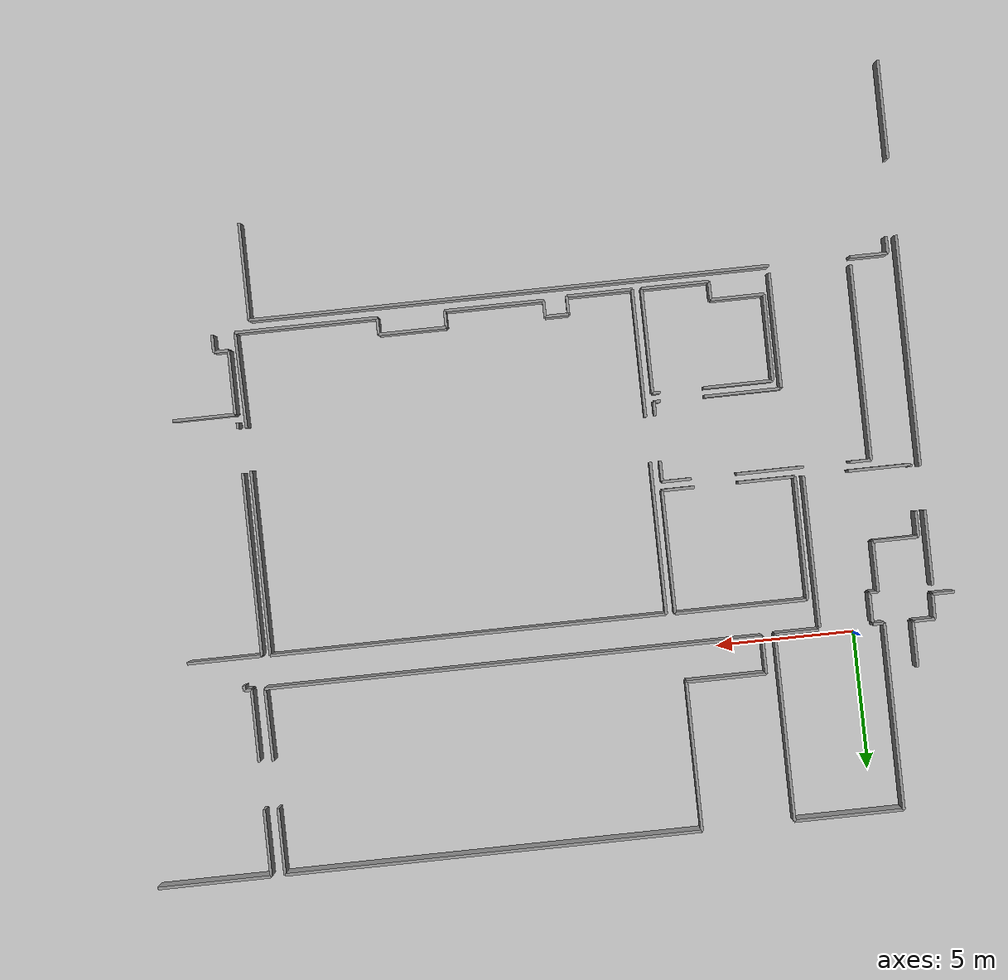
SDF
<sdf version="1.6">
 <world name="default">
  <model name="ground_plane">
   <static>1</static>
   <link name="link">
    <collision name="collision">
     <geometry><plane><normal>0 0 1</normal><size>100 100</size></plane></geometry>
     <surface><friction><ode><mu>100</mu><mu2>50</mu2></ode></friction></surface>
    </collision>
    <visual name="visual">
     <cast_shadows>0</cast_shadows>
     <geometry><plane><normal>0 0 1</normal><size>100 100</size></plane></geometry>
     <material>
      <script><uri>file://media/materials/scripts/gazebo.material</uri><name>Gazebo/Grey</name></script>
     </material>
    </visual>
   </link>
  </model>
  <model name="0510032260_A_40_1_102">
   <static>1</static>
   <link name="Wall_215">
    <collision name="Wall_215_Collision">
     <geometry><box><size>2.72819002773 0.1 2.5</size></box></geometry>
     <pose>1.36409501387 0 1.25 0 0 0</pose>
    </collision>
    <visual name="Wall_215_Visual">
     <pose>1.36409501387 0 1.25 0 0 0</pose>
     <geometry><box><size>2.72819002773 0.1 2.5</size></box></geometry>
     <material>
      <script><uri>file://media/materials/scripts/gazebo.material</uri><name>Gazebo/Grey</name></script>
      <ambient>1 1 1 1</ambient>
     </material>
    </visual>
    <pose>47.396257068 -32.2178998204 0 0 0 -1.57079632679</pose>
   </link>
   <link name="Wall_216">
    <collision name="Wall_216_Collision">
     <geometry><box><size>8.36936862613 0.1 2.5</size></box></geometry>
     <pose>4.18468431307 0 1.25 0 0 0</pose>
    </collision>
    <visual name="Wall_216_Visual">
     <pose>4.18468431307 0 1.25 0 0 0</pose>
     <geometry><box><size>8.36936862613 0.1 2.5</size></box></geometry>
     <material>
      <script><uri>file://media/materials/scripts/gazebo.material</uri><name>Gazebo/Grey</name></script>
      <ambient>1 1 1 1</ambient>
     </material>
    </visual>
    <pose>47.396257068 -36.5375657615 0 0 0 -1.57079632679</pose>
   </link>
   <link name="Wall_217">
    <collision name="Wall_217_Collision">
     <geometry><box><size>3.55483350997 0.1 2.5</size></box></geometry>
     <pose>1.77741675498 0 1.25 0 0 0</pose>
    </collision>
    <visual name="Wall_217_Visual">
     <pose>1.77741675498 0 1.25 0 0 0</pose>
     <geometry><box><size>3.55483350997 0.1 2.5</size></box></geometry>
     <material>
      <script><uri>file://media/materials/scripts/gazebo.material</uri><name>Gazebo/Grey</name></script>
      <ambient>1 1 1 1</ambient>
     </material>
    </visual>
    <pose>47.396257068 -47.6846240251 0 0 0 -1.57079632679</pose>
   </link>
   <link name="Wall_231">
    <collision name="Wall_231_Collision">
     <geometry><box><size>0.780570768577 0.1 2.5</size></box></geometry>
     <pose>0.390285384288 0 1.25 0 0 0</pose>
    </collision>
    <visual name="Wall_231_Visual">
     <pose>0.390285384288 0 1.25 0 0 0</pose>
     <geometry><box><size>0.780570768577 0.1 2.5</size></box></geometry>
     <material>
      <script><uri>file://media/materials/scripts/gazebo.material</uri><name>Gazebo/Grey</name></script>
      <ambient>1 1 1 1</ambient>
     </material>
    </visual>
    <pose>47.427987587 -31.9126522272 0 0 0 3.14159265359</pose>
   </link>
   <link name="Wall_239">
    <collision name="Wall_239_Collision">
     <geometry><box><size>1.66851761361 0.1 2.5</size></box></geometry>
     <pose>0.834258806806 0 1.25 0 0 0</pose>
    </collision>
    <visual name="Wall_239_Visual">
     <pose>0.834258806806 0 1.25 0 0 0</pose>
     <geometry><box><size>1.66851761361 0.1 2.5</size></box></geometry>
     <material>
      <script><uri>file://media/materials/scripts/gazebo.material</uri><name>Gazebo/Grey</name></script>
      <ambient>1 1 1 1</ambient>
     </material>
    </visual>
    <pose>48.2353389137 -29.3415917298 0 0 0 -1.57079632679</pose>
   </link>
   <link name="Wall_240">
    <collision name="Wall_240_Collision">
     <geometry><box><size>0.792501443739 0.1 2.5</size></box></geometry>
     <pose>0.396250721869 0 1.25 0 0 0</pose>
    </collision>
    <visual name="Wall_240_Visual">
     <pose>0.396250721869 0 1.25 0 0 0</pose>
     <geometry><box><size>0.792501443739 0.1 2.5</size></box></geometry>
     <material>
      <script><uri>file://media/materials/scripts/gazebo.material</uri><name>Gazebo/Grey</name></script>
      <ambient>1 1 1 1</ambient>
     </material>
    </visual>
    <pose>48.2353389137 -31.0101093434 0 0 0 3.14159265359</pose>
   </link>
   <link name="Wall_241">
    <collision name="Wall_241_Collision">
     <geometry><box><size>0.902665040928 0.1 2.5</size></box></geometry>
     <pose>0.451332520464 0 1.25 0 0 0</pose>
    </collision>
    <visual name="Wall_241_Visual">
     <pose>0.451332520464 0 1.25 0 0 0</pose>
     <geometry><box><size>0.902665040928 0.1 2.5</size></box></geometry>
     <material>
      <script><uri>file://media/materials/scripts/gazebo.material</uri><name>Gazebo/Grey</name></script>
      <ambient>1 1 1 1</ambient>
     </material>
    </visual>
    <pose>47.4428374699 -31.0101093434 0 0 0 -1.5872482244</pose>
   </link>
   <link name="Wall_242">
    <collision name="Wall_242_Collision">
     <geometry><box><size>2.2720320859 0.1 2.5</size></box></geometry>
     <pose>1.13601604295 0 1.25 0 0 0</pose>
    </collision>
    <visual name="Wall_242_Visual">
     <pose>1.13601604295 0 1.25 0 0 0</pose>
     <geometry><box><size>2.2720320859 0.1 2.5</size></box></geometry>
     <material>
      <script><uri>file://media/materials/scripts/gazebo.material</uri><name>Gazebo/Grey</name></script>
      <ambient>1 1 1 1</ambient>
     </material>
    </visual>
    <pose>49.9943519676 -36.6326303966 0 0 0 3.14159265359</pose>
   </link>
   <link name="Wall_243">
    <collision name="Wall_243_Collision">
     <geometry><box><size>0.0864339338863 0.1 2.5</size></box></geometry>
     <pose>0.0432169669431 0 1.25 0 0 0</pose>
    </collision>
    <visual name="Wall_243_Visual">
     <pose>0.0432169669431 0 1.25 0 0 0</pose>
     <geometry><box><size>0.0864339338863 0.1 2.5</size></box></geometry>
     <material>
      <script><uri>file://media/materials/scripts/gazebo.material</uri><name>Gazebo/Grey</name></script>
      <ambient>1 1 1 1</ambient>
     </material>
    </visual>
    <pose>47.7223198817 -36.6326303966 0 0 0 1.57079632679</pose>
   </link>
   <link name="Wall_244">
    <collision name="Wall_244_Collision">
     <geometry><box><size>0.929450363949 0.1 2.5</size></box></geometry>
     <pose>0.464725181975 0 1.25 0 0 0</pose>
    </collision>
    <visual name="Wall_244_Visual">
     <pose>0.464725181975 0 1.25 0 0 0</pose>
     <geometry><box><size>0.929450363949 0.1 2.5</size></box></geometry>
     <material>
      <script><uri>file://media/materials/scripts/gazebo.material</uri><name>Gazebo/Grey</name></script>
      <ambient>1 1 1 1</ambient>
     </material>
    </visual>
    <pose>47.7223198817 -34.9482475234 0 0 0 1.57079632679</pose>
   </link>
   <link name="Wall_245">
    <collision name="Wall_245_Collision">
     <geometry><box><size>1.65163697748 0.1 2.5</size></box></geometry>
     <pose>0.825818488739 0 1.25 0 0 0</pose>
    </collision>
    <visual name="Wall_245_Visual">
     <pose>0.825818488739 0 1.25 0 0 0</pose>
     <geometry><box><size>1.65163697748 0.1 2.5</size></box></geometry>
     <material>
      <script><uri>file://media/materials/scripts/gazebo.material</uri><name>Gazebo/Grey</name></script>
      <ambient>1 1 1 1</ambient>
     </material>
    </visual>
    <pose>47.7223198817 -34.0187971595 0 0 0 0.0</pose>
   </link>
   <link name="Wall_246">
    <collision name="Wall_246_Collision">
     <geometry><box><size>1.81930104013 0.1 2.5</size></box></geometry>
     <pose>0.909650520063 0 1.25 0 0 0</pose>
    </collision>
    <visual name="Wall_246_Visual">
     <pose>0.909650520063 0 1.25 0 0 0</pose>
     <geometry><box><size>1.81930104013 0.1 2.5</size></box></geometry>
     <material>
      <script><uri>file://media/materials/scripts/gazebo.material</uri><name>Gazebo/Grey</name></script>
      <ambient>1 1 1 1</ambient>
     </material>
    </visual>
    <pose>49.3739568592 -34.0187971595 0 0 0 1.57079632679</pose>
   </link>
   <link name="Wall_247">
    <collision name="Wall_247_Collision">
     <geometry><box><size>0.313116761964 0.1 2.5</size></box></geometry>
     <pose>0.156558380982 0 1.25 0 0 0</pose>
    </collision>
    <visual name="Wall_247_Visual">
     <pose>0.156558380982 0 1.25 0 0 0</pose>
     <geometry><box><size>0.313116761964 0.1 2.5</size></box></geometry>
     <material>
      <script><uri>file://media/materials/scripts/gazebo.material</uri><name>Gazebo/Grey</name></script>
      <ambient>1 1 1 1</ambient>
     </material>
    </visual>
    <pose>49.3739568592 -32.1994961194 0 0 0 0.0</pose>
   </link>
   <link name="Wall_248">
    <collision name="Wall_248_Collision">
     <geometry><box><size>1.067795427 0.1 2.5</size></box></geometry>
     <pose>0.533897713499 0 1.25 0 0 0</pose>
    </collision>
    <visual name="Wall_248_Visual">
     <pose>0.533897713499 0 1.25 0 0 0</pose>
     <geometry><box><size>1.067795427 0.1 2.5</size></box></geometry>
     <material>
      <script><uri>file://media/materials/scripts/gazebo.material</uri><name>Gazebo/Grey</name></script>
      <ambient>1 1 1 1</ambient>
     </material>
    </visual>
    <pose>49.6870736212 -32.1994961194 0 0 0 1.57079632679</pose>
   </link>
   <link name="Wall_249">
    <collision name="Wall_249_Collision">
     <geometry><box><size>5.50095678647 0.1 2.5</size></box></geometry>
     <pose>2.75047839324 0 1.25 0 0 0</pose>
    </collision>
    <visual name="Wall_249_Visual">
     <pose>2.75047839324 0 1.25 0 0 0</pose>
     <geometry><box><size>5.50095678647 0.1 2.5</size></box></geometry>
     <material>
      <script><uri>file://media/materials/scripts/gazebo.material</uri><name>Gazebo/Grey</name></script>
      <ambient>1 1 1 1</ambient>
     </material>
    </visual>
    <pose>51.6015662184 -31.1317006924 0 0 0 -1.56765843072</pose>
   </link>
   <link name="Wall_250">
    <collision name="Wall_250_Collision">
     <geometry><box><size>1.58652595239 0.1 2.5</size></box></geometry>
     <pose>0.793262976196 0 1.25 0 0 0</pose>
    </collision>
    <visual name="Wall_250_Visual">
     <pose>0.793262976196 0 1.25 0 0 0</pose>
     <geometry><box><size>1.58652595239 0.1 2.5</size></box></geometry>
     <material>
      <script><uri>file://media/materials/scripts/gazebo.material</uri><name>Gazebo/Grey</name></script>
      <ambient>1 1 1 1</ambient>
     </material>
    </visual>
    <pose>53.228326469 -31.0495821091 0 0 0 3.14159265359</pose>
   </link>
   <link name="Wall_251">
    <collision name="Wall_251_Collision">
     <geometry><box><size>0.418842851431 0.1 2.5</size></box></geometry>
     <pose>0.209421425716 0 1.25 0 0 0</pose>
    </collision>
    <visual name="Wall_251_Visual">
     <pose>0.209421425716 0 1.25 0 0 0</pose>
     <geometry><box><size>0.418842851431 0.1 2.5</size></box></geometry>
     <material>
      <script><uri>file://media/materials/scripts/gazebo.material</uri><name>Gazebo/Grey</name></script>
      <ambient>1 1 1 1</ambient>
     </material>
    </visual>
    <pose>49.6872005432 -31.0495821091 0 0 0 3.14159265359</pose>
   </link>
   <link name="Wall_252">
    <collision name="Wall_252_Collision">
     <geometry><box><size>6.75225445338 0.1 2.5</size></box></geometry>
     <pose>3.37612722669 0 1.25 0 0 0</pose>
    </collision>
    <visual name="Wall_252_Visual">
     <pose>3.37612722669 0 1.25 0 0 0</pose>
     <geometry><box><size>6.75225445338 0.1 2.5</size></box></geometry>
     <material>
      <script><uri>file://media/materials/scripts/gazebo.material</uri><name>Gazebo/Grey</name></script>
      <ambient>1 1 1 1</ambient>
     </material>
    </visual>
    <pose>49.2683576918 -31.0495821091 0 0 0 1.57079632679</pose>
   </link>
   <link name="Wall_253">
    <collision name="Wall_253_Collision">
     <geometry><box><size>3.9555265045 0.1 2.5</size></box></geometry>
     <pose>1.97776325225 0 1.25 0 0 0</pose>
    </collision>
    <visual name="Wall_253_Visual">
     <pose>1.97776325225 0 1.25 0 0 0</pose>
     <geometry><box><size>3.9555265045 0.1 2.5</size></box></geometry>
     <material>
      <script><uri>file://media/materials/scripts/gazebo.material</uri><name>Gazebo/Grey</name></script>
      <ambient>1 1 1 1</ambient>
     </material>
    </visual>
    <pose>49.2683576918 -24.2973276557 0 0 0 0.0</pose>
   </link>
   <link name="Wall_254">
    <collision name="Wall_254_Collision">
     <geometry><box><size>6.75225591465 0.1 2.5</size></box></geometry>
     <pose>3.37612795733 0 1.25 0 0 0</pose>
    </collision>
    <visual name="Wall_254_Visual">
     <pose>3.37612795733 0 1.25 0 0 0</pose>
     <geometry><box><size>6.75225591465 0.1 2.5</size></box></geometry>
     <material>
      <script><uri>file://media/materials/scripts/gazebo.material</uri><name>Gazebo/Grey</name></script>
      <ambient>1 1 1 1</ambient>
     </material>
    </visual>
    <pose>53.2238841963 -24.2973276557 0 0 0 -1.57013843215</pose>
   </link>
   <link name="Wall_255">
    <collision name="Wall_255_Collision">
     <geometry><box><size>7.07476344898 0.1 2.5</size></box></geometry>
     <pose>3.53738172449 0 1.25 0 0 0</pose>
    </collision>
    <visual name="Wall_255_Visual">
     <pose>3.53738172449 0 1.25 0 0 0</pose>
     <geometry><box><size>7.07476344898 0.1 2.5</size></box></geometry>
     <material>
      <script><uri>file://media/materials/scripts/gazebo.material</uri><name>Gazebo/Grey</name></script>
      <ambient>1 1 1 1</ambient>
     </material>
    </visual>
    <pose>49.128743408 -44.0210182958 0 0 0 1.57079632679</pose>
   </link>
   <link name="Wall_256">
    <collision name="Wall_256_Collision">
     <geometry><box><size>0.774224664767 0.1 2.5</size></box></geometry>
     <pose>0.387112332384 0 1.25 0 0 0</pose>
    </collision>
    <visual name="Wall_256_Visual">
     <pose>0.387112332384 0 1.25 0 0 0</pose>
     <geometry><box><size>0.774224664767 0.1 2.5</size></box></geometry>
     <material>
      <script><uri>file://media/materials/scripts/gazebo.material</uri><name>Gazebo/Grey</name></script>
      <ambient>1 1 1 1</ambient>
     </material>
    </visual>
    <pose>49.128743408 -36.9462548468 0 0 0 0.0</pose>
   </link>
   <link name="Wall_257">
    <collision name="Wall_257_Collision">
     <geometry><box><size>2.42801931754 0.1 2.5</size></box></geometry>
     <pose>1.21400965877 0 1.25 0 0 0</pose>
    </collision>
    <visual name="Wall_257_Visual">
     <pose>1.21400965877 0 1.25 0 0 0</pose>
     <geometry><box><size>2.42801931754 0.1 2.5</size></box></geometry>
     <material>
      <script><uri>file://media/materials/scripts/gazebo.material</uri><name>Gazebo/Grey</name></script>
      <ambient>1 1 1 1</ambient>
     </material>
    </visual>
    <pose>51.570851076 -36.9462548468 0 0 0 0.0</pose>
   </link>
   <link name="Wall_258">
    <collision name="Wall_258_Collision">
     <geometry><box><size>1.05345323239 0.1 2.5</size></box></geometry>
     <pose>0.526726616194 0 1.25 0 0 0</pose>
    </collision>
    <visual name="Wall_258_Visual">
     <pose>0.526726616194 0 1.25 0 0 0</pose>
     <geometry><box><size>1.05345323239 0.1 2.5</size></box></geometry>
     <material>
      <script><uri>file://media/materials/scripts/gazebo.material</uri><name>Gazebo/Grey</name></script>
      <ambient>1 1 1 1</ambient>
     </material>
    </visual>
    <pose>55.6398459166 -36.9462548468 0 0 0 0.0</pose>
   </link>
   <link name="Wall_259">
    <collision name="Wall_259_Collision">
     <geometry><box><size>0.754044054653 0.1 2.5</size></box></geometry>
     <pose>0.377022027326 0 1.25 0 0 0</pose>
    </collision>
    <visual name="Wall_259_Visual">
     <pose>0.377022027326 0 1.25 0 0 0</pose>
     <geometry><box><size>0.754044054653 0.1 2.5</size></box></geometry>
     <material>
      <script><uri>file://media/materials/scripts/gazebo.material</uri><name>Gazebo/Grey</name></script>
      <ambient>1 1 1 1</ambient>
     </material>
    </visual>
    <pose>56.693299149 -36.9462548468 0 0 0 -1.57079632679</pose>
   </link>
   <link name="Wall_260">
    <collision name="Wall_260_Collision">
     <geometry><box><size>0.508069070994 0.1 2.5</size></box></geometry>
     <pose>0.254034535497 0 1.25 0 0 0</pose>
    </collision>
    <visual name="Wall_260_Visual">
     <pose>0.254034535497 0 1.25 0 0 0</pose>
     <geometry><box><size>0.508069070994 0.1 2.5</size></box></geometry>
     <material>
      <script><uri>file://media/materials/scripts/gazebo.material</uri><name>Gazebo/Grey</name></script>
      <ambient>1 1 1 1</ambient>
     </material>
    </visual>
    <pose>56.693299149 -39.3408936583 0 0 0 -1.57079632679</pose>
   </link>
   <link name="Wall_261">
    <collision name="Wall_261_Collision">
     <geometry><box><size>0.237471204554 0.1 2.5</size></box></geometry>
     <pose>0.118735602277 0 1.25 0 0 0</pose>
    </collision>
    <visual name="Wall_261_Visual">
     <pose>0.118735602277 0 1.25 0 0 0</pose>
     <geometry><box><size>0.237471204554 0.1 2.5</size></box></geometry>
     <material>
      <script><uri>file://media/materials/scripts/gazebo.material</uri><name>Gazebo/Grey</name></script>
      <ambient>1 1 1 1</ambient>
     </material>
    </visual>
    <pose>56.693299149 -39.8489627293 0 0 0 3.14159265359</pose>
   </link>
   <link name="Wall_262">
    <collision name="Wall_262_Collision">
     <geometry><box><size>2.77680118291 0.1 2.5</size></box></geometry>
     <pose>1.38840059146 0 1.25 0 0 0</pose>
    </collision>
    <visual name="Wall_262_Visual">
     <pose>1.38840059146 0 1.25 0 0 0</pose>
     <geometry><box><size>2.77680118291 0.1 2.5</size></box></geometry>
     <material>
      <script><uri>file://media/materials/scripts/gazebo.material</uri><name>Gazebo/Grey</name></script>
      <ambient>1 1 1 1</ambient>
     </material>
    </visual>
    <pose>54.8567367065 -39.8489627293 0 0 0 3.14159265359</pose>
   </link>
   <link name="Wall_263">
    <collision name="Wall_263_Collision">
     <geometry><box><size>4.1720600146 0.1 2.5</size></box></geometry>
     <pose>2.0860300073 0 1.25 0 0 0</pose>
    </collision>
    <visual name="Wall_263_Visual">
     <pose>2.0860300073 0 1.25 0 0 0</pose>
     <geometry><box><size>4.1720600146 0.1 2.5</size></box></geometry>
     <material>
      <script><uri>file://media/materials/scripts/gazebo.material</uri><name>Gazebo/Grey</name></script>
      <ambient>1 1 1 1</ambient>
     </material>
    </visual>
    <pose>52.0799355236 -39.8489627293 0 0 0 -1.56933607411</pose>
   </link>
   <link name="Wall_265">
    <collision name="Wall_265_Collision">
     <geometry><box><size>0.606941368347 0.1 2.5</size></box></geometry>
     <pose>0.303470684173 0 1.25 0 0 0</pose>
    </collision>
    <visual name="Wall_265_Visual">
     <pose>0.303470684173 0 1.25 0 0 0</pose>
     <geometry><box><size>0.606941368347 0.1 2.5</size></box></geometry>
     <material>
      <script><uri>file://media/materials/scripts/gazebo.material</uri><name>Gazebo/Grey</name></script>
      <ambient>1 1 1 1</ambient>
     </material>
    </visual>
    <pose>47.7579849851 -44.9033805695 0 0 0 1.57079632679</pose>
   </link>
   <link name="Wall_266">
    <collision name="Wall_266_Collision">
     <geometry><box><size>1.37126611117 0.1 2.5</size></box></geometry>
     <pose>0.685633055586 0 1.25 0 0 0</pose>
    </collision>
    <visual name="Wall_266_Visual">
     <pose>0.685633055586 0 1.25 0 0 0</pose>
     <geometry><box><size>1.37126611117 0.1 2.5</size></box></geometry>
     <material>
      <script><uri>file://media/materials/scripts/gazebo.material</uri><name>Gazebo/Grey</name></script>
      <ambient>1 1 1 1</ambient>
     </material>
    </visual>
    <pose>47.7579849851 -44.2964392012 0 0 0 0.0</pose>
   </link>
   <link name="Wall_267">
    <collision name="Wall_267_Collision">
     <geometry><box><size>18.8203862239 0.1 2.5</size></box></geometry>
     <pose>9.41019311194 0 1.25 0 0 0</pose>
    </collision>
    <visual name="Wall_267_Visual">
     <pose>9.41019311194 0 1.25 0 0 0</pose>
     <geometry><box><size>18.8203862239 0.1 2.5</size></box></geometry>
     <material>
      <script><uri>file://media/materials/scripts/gazebo.material</uri><name>Gazebo/Grey</name></script>
      <ambient>1 1 1 1</ambient>
     </material>
    </visual>
    <pose>52.0733355756 -44.2964392012 0 0 0 0.0</pose>
   </link>
   <link name="Wall_268">
    <collision name="Wall_268_Collision">
     <geometry><box><size>3.50964925084 0.1 2.5</size></box></geometry>
     <pose>1.75482462542 0 1.25 0 0 0</pose>
    </collision>
    <visual name="Wall_268_Visual">
     <pose>1.75482462542 0 1.25 0 0 0</pose>
     <geometry><box><size>3.50964925084 0.1 2.5</size></box></geometry>
     <material>
      <script><uri>file://media/materials/scripts/gazebo.material</uri><name>Gazebo/Grey</name></script>
      <ambient>1 1 1 1</ambient>
     </material>
    </visual>
    <pose>70.8937217995 -44.2964392012 0 0 0 -1.57079632679</pose>
   </link>
   <link name="Wall_316">
    <collision name="Wall_316_Collision">
     <geometry><box><size>1.15689472448 0.1 2.5</size></box></geometry>
     <pose>0.578447362242 0 1.25 0 0 0</pose>
    </collision>
    <visual name="Wall_316_Visual">
     <pose>0.578447362242 0 1.25 0 0 0</pose>
     <geometry><box><size>1.15689472448 0.1 2.5</size></box></geometry>
     <material>
      <script><uri>file://media/materials/scripts/gazebo.material</uri><name>Gazebo/Grey</name></script>
      <ambient>1 1 1 1</ambient>
     </material>
    </visual>
    <pose>56.7313757718 -36.6341534615 0 0 0 3.14159265359</pose>
   </link>
   <link name="Wall_317">
    <collision name="Wall_317_Collision">
     <geometry><box><size>2.05385303693 0.1 2.5</size></box></geometry>
     <pose>1.02692651846 0 1.25 0 0 0</pose>
    </collision>
    <visual name="Wall_317_Visual">
     <pose>1.02692651846 0 1.25 0 0 0</pose>
     <geometry><box><size>2.05385303693 0.1 2.5</size></box></geometry>
     <material>
      <script><uri>file://media/materials/scripts/gazebo.material</uri><name>Gazebo/Grey</name></script>
      <ambient>1 1 1 1</ambient>
     </material>
    </visual>
    <pose>53.97970516 -36.6341534615 0 0 0 3.14159265359</pose>
   </link>
   <link name="Wall_318">
    <collision name="Wall_318_Collision">
     <geometry><box><size>4.45458410809 0.1 2.5</size></box></geometry>
     <pose>2.22729205404 0 1.25 0 0 0</pose>
    </collision>
    <visual name="Wall_318_Visual">
     <pose>2.22729205404 0 1.25 0 0 0</pose>
     <geometry><box><size>4.45458410809 0.1 2.5</size></box></geometry>
     <material>
      <script><uri>file://media/materials/scripts/gazebo.material</uri><name>Gazebo/Grey</name></script>
      <ambient>1 1 1 1</ambient>
     </material>
    </visual>
    <pose>51.9258521231 -36.6341534615 0 0 0 1.57079632679</pose>
   </link>
   <link name="Wall_319">
    <collision name="Wall_319_Collision">
     <geometry><box><size>4.79866985664 0.1 2.5</size></box></geometry>
     <pose>2.39933492832 0 1.25 0 0 0</pose>
    </collision>
    <visual name="Wall_319_Visual">
     <pose>2.39933492832 0 1.25 0 0 0</pose>
     <geometry><box><size>4.79866985664 0.1 2.5</size></box></geometry>
     <material>
      <script><uri>file://media/materials/scripts/gazebo.material</uri><name>Gazebo/Grey</name></script>
      <ambient>1 1 1 1</ambient>
     </material>
    </visual>
    <pose>51.9258521231 -32.1795693534 0 0 0 0.0</pose>
   </link>
   <link name="Wall_320">
    <collision name="Wall_320_Collision">
     <geometry><box><size>4.45458938068 0.1 2.5</size></box></geometry>
     <pose>2.22729469034 0 1.25 0 0 0</pose>
    </collision>
    <visual name="Wall_320_Visual">
     <pose>2.22729469034 0 1.25 0 0 0</pose>
     <geometry><box><size>4.45458938068 0.1 2.5</size></box></geometry>
     <material>
      <script><uri>file://media/materials/scripts/gazebo.material</uri><name>Gazebo/Grey</name></script>
      <ambient>1 1 1 1</ambient>
     </material>
    </visual>
    <pose>56.7245219797 -32.1795693534 0 0 0 -1.56925773497</pose>
   </link>
   <link name="Wall_321">
    <collision name="Wall_321_Collision">
     <geometry><box><size>2.43906153817 0.1 2.5</size></box></geometry>
     <pose>1.21953076908 0 1.25 0 0 0</pose>
    </collision>
    <visual name="Wall_321_Visual">
     <pose>1.21953076908 0 1.25 0 0 0</pose>
     <geometry><box><size>2.43906153817 0.1 2.5</size></box></geometry>
     <material>
      <script><uri>file://media/materials/scripts/gazebo.material</uri><name>Gazebo/Grey</name></script>
      <ambient>1 1 1 1</ambient>
     </material>
    </visual>
    <pose>56.7114490059 -43.9542572837 0 0 0 3.14159265359</pose>
   </link>
   <link name="Wall_322">
    <collision name="Wall_322_Collision">
     <geometry><box><size>0.66215247149 0.1 2.5</size></box></geometry>
     <pose>0.331076235745 0 1.25 0 0 0</pose>
    </collision>
    <visual name="Wall_322_Visual">
     <pose>0.331076235745 0 1.25 0 0 0</pose>
     <geometry><box><size>0.66215247149 0.1 2.5</size></box></geometry>
     <material>
      <script><uri>file://media/materials/scripts/gazebo.material</uri><name>Gazebo/Grey</name></script>
      <ambient>1 1 1 1</ambient>
     </material>
    </visual>
    <pose>54.2723874677 -43.9542572837 0 0 0 1.57079632679</pose>
   </link>
   <link name="Wall_323">
    <collision name="Wall_323_Collision">
     <geometry><box><size>1.92033101277 0.1 2.5</size></box></geometry>
     <pose>0.960165506387 0 1.25 0 0 0</pose>
    </collision>
    <visual name="Wall_323_Visual">
     <pose>0.960165506387 0 1.25 0 0 0</pose>
     <geometry><box><size>1.92033101277 0.1 2.5</size></box></geometry>
     <material>
      <script><uri>file://media/materials/scripts/gazebo.material</uri><name>Gazebo/Grey</name></script>
      <ambient>1 1 1 1</ambient>
     </material>
    </visual>
    <pose>54.2723874677 -43.2921048123 0 0 0 3.14159265359</pose>
   </link>
   <link name="Wall_324">
    <collision name="Wall_324_Collision">
     <geometry><box><size>3.13116761964 0.1 2.5</size></box></geometry>
     <pose>1.56558380982 0 1.25 0 0 0</pose>
    </collision>
    <visual name="Wall_324_Visual">
     <pose>1.56558380982 0 1.25 0 0 0</pose>
     <geometry><box><size>3.13116761964 0.1 2.5</size></box></geometry>
     <material>
      <script><uri>file://media/materials/scripts/gazebo.material</uri><name>Gazebo/Grey</name></script>
      <ambient>1 1 1 1</ambient>
     </material>
    </visual>
    <pose>52.3520564549 -43.2921048123 0 0 0 1.57079632679</pose>
   </link>
   <link name="Wall_325">
    <collision name="Wall_325_Collision">
     <geometry><box><size>2.49998413474 0.1 2.5</size></box></geometry>
     <pose>1.24999206737 0 1.25 0 0 0</pose>
    </collision>
    <visual name="Wall_325_Visual">
     <pose>1.24999206737 0 1.25 0 0 0</pose>
     <geometry><box><size>2.49998413474 0.1 2.5</size></box></geometry>
     <material>
      <script><uri>file://media/materials/scripts/gazebo.material</uri><name>Gazebo/Grey</name></script>
      <ambient>1 1 1 1</ambient>
     </material>
    </visual>
    <pose>52.3520564549 -40.1609371926 0 0 0 0.0</pose>
   </link>
   <link name="Wall_326">
    <collision name="Wall_326_Collision">
     <geometry><box><size>0.279228567621 0.1 2.5</size></box></geometry>
     <pose>0.13961428381 0 1.25 0 0 0</pose>
    </collision>
    <visual name="Wall_326_Visual">
     <pose>0.13961428381 0 1.25 0 0 0</pose>
     <geometry><box><size>0.279228567621 0.1 2.5</size></box></geometry>
     <material>
      <script><uri>file://media/materials/scripts/gazebo.material</uri><name>Gazebo/Grey</name></script>
      <ambient>1 1 1 1</ambient>
     </material>
    </visual>
    <pose>56.426762789 -40.1609371926 0 0 0 0.0</pose>
   </link>
   <link name="Wall_327">
    <collision name="Wall_327_Collision">
     <geometry><box><size>3.79332401723 0.1 2.5</size></box></geometry>
     <pose>1.89666200862 0 1.25 0 0 0</pose>
    </collision>
    <visual name="Wall_327_Visual">
     <pose>1.89666200862 0 1.25 0 0 0</pose>
     <geometry><box><size>3.79332401723 0.1 2.5</size></box></geometry>
     <material>
      <script><uri>file://media/materials/scripts/gazebo.material</uri><name>Gazebo/Grey</name></script>
      <ambient>1 1 1 1</ambient>
     </material>
    </visual>
    <pose>56.7059913566 -40.1609371926 0 0 0 -1.56935757515</pose>
   </link>
   <link name="Wall_328">
    <collision name="Wall_328_Collision">
     <geometry><box><size>5.14339021558 0.1 2.5</size></box></geometry>
     <pose>2.57169510779 0 1.25 0 0 0</pose>
    </collision>
    <visual name="Wall_328_Visual">
     <pose>2.57169510779 0 1.25 0 0 0</pose>
     <geometry><box><size>5.14339021558 0.1 2.5</size></box></geometry>
     <material>
      <script><uri>file://media/materials/scripts/gazebo.material</uri><name>Gazebo/Grey</name></script>
      <ambient>1 1 1 1</ambient>
     </material>
    </visual>
    <pose>71.4446905322 -43.8998077131 0 0 0 3.14159265359</pose>
   </link>
   <link name="Wall_329">
    <collision name="Wall_329_Collision">
     <geometry><box><size>0.602245251528 0.1 2.5</size></box></geometry>
     <pose>0.301122625764 0 1.25 0 0 0</pose>
    </collision>
    <visual name="Wall_329_Visual">
     <pose>0.301122625764 0 1.25 0 0 0</pose>
     <geometry><box><size>0.602245251528 0.1 2.5</size></box></geometry>
     <material>
      <script><uri>file://media/materials/scripts/gazebo.material</uri><name>Gazebo/Grey</name></script>
      <ambient>1 1 1 1</ambient>
     </material>
    </visual>
    <pose>66.3013003167 -43.8998077131 0 0 0 1.57079632679</pose>
   </link>
   <link name="Wall_330">
    <collision name="Wall_330_Collision">
     <geometry><box><size>2.44959607049 0.1 2.5</size></box></geometry>
     <pose>1.22479803525 0 1.25 0 0 0</pose>
    </collision>
    <visual name="Wall_330_Visual">
     <pose>1.22479803525 0 1.25 0 0 0</pose>
     <geometry><box><size>2.44959607049 0.1 2.5</size></box></geometry>
     <material>
      <script><uri>file://media/materials/scripts/gazebo.material</uri><name>Gazebo/Grey</name></script>
      <ambient>1 1 1 1</ambient>
     </material>
    </visual>
    <pose>66.3013003167 -43.2975624615 0 0 0 3.14159265359</pose>
   </link>
   <link name="Wall_331">
    <collision name="Wall_331_Collision">
     <geometry><box><size>0.596533758099 0.1 2.5</size></box></geometry>
     <pose>0.29826687905 0 1.25 0 0 0</pose>
    </collision>
    <visual name="Wall_331_Visual">
     <pose>0.29826687905 0 1.25 0 0 0</pose>
     <geometry><box><size>0.596533758099 0.1 2.5</size></box></geometry>
     <material>
      <script><uri>file://media/materials/scripts/gazebo.material</uri><name>Gazebo/Grey</name></script>
      <ambient>1 1 1 1</ambient>
     </material>
    </visual>
    <pose>63.8517042462 -43.2975624615 0 0 0 -1.57079632679</pose>
   </link>
   <link name="Wall_332">
    <collision name="Wall_332_Collision">
     <geometry><box><size>3.5792025486 0.1 2.5</size></box></geometry>
     <pose>1.7896012743 0 1.25 0 0 0</pose>
    </collision>
    <visual name="Wall_332_Visual">
     <pose>1.7896012743 0 1.25 0 0 0</pose>
     <geometry><box><size>3.5792025486 0.1 2.5</size></box></geometry>
     <material>
      <script><uri>file://media/materials/scripts/gazebo.material</uri><name>Gazebo/Grey</name></script>
      <ambient>1 1 1 1</ambient>
     </material>
    </visual>
    <pose>63.8517042462 -43.8940962196 0 0 0 3.14159265359</pose>
   </link>
   <link name="Wall_333">
    <collision name="Wall_333_Collision">
     <geometry><box><size>0.58384155048 0.1 2.5</size></box></geometry>
     <pose>0.29192077524 0 1.25 0 0 0</pose>
    </collision>
    <visual name="Wall_333_Visual">
     <pose>0.29192077524 0 1.25 0 0 0</pose>
     <geometry><box><size>0.58384155048 0.1 2.5</size></box></geometry>
     <material>
      <script><uri>file://media/materials/scripts/gazebo.material</uri><name>Gazebo/Grey</name></script>
      <ambient>1 1 1 1</ambient>
     </material>
    </visual>
    <pose>60.2725016976 -43.8940962196 0 0 0 1.57079632679</pose>
   </link>
   <link name="Wall_334">
    <collision name="Wall_334_Collision">
     <geometry><box><size>0.850377910482 0.1 2.5</size></box></geometry>
     <pose>0.425188955241 0 1.25 0 0 0</pose>
    </collision>
    <visual name="Wall_334_Visual">
     <pose>0.425188955241 0 1.25 0 0 0</pose>
     <geometry><box><size>0.850377910482 0.1 2.5</size></box></geometry>
     <material>
      <script><uri>file://media/materials/scripts/gazebo.material</uri><name>Gazebo/Grey</name></script>
      <ambient>1 1 1 1</ambient>
     </material>
    </visual>
    <pose>60.2725016976 -43.3102546691 0 0 0 3.14159265359</pose>
   </link>
   <link name="Wall_335">
    <collision name="Wall_335_Collision">
     <geometry><box><size>0.647302588576 0.1 2.5</size></box></geometry>
     <pose>0.323651294288 0 1.25 0 0 0</pose>
    </collision>
    <visual name="Wall_335_Visual">
     <pose>0.323651294288 0 1.25 0 0 0</pose>
     <geometry><box><size>0.647302588576 0.1 2.5</size></box></geometry>
     <material>
      <script><uri>file://media/materials/scripts/gazebo.material</uri><name>Gazebo/Grey</name></script>
      <ambient>1 1 1 1</ambient>
     </material>
    </visual>
    <pose>59.4221237871 -43.3102546691 0 0 0 -1.57079632679</pose>
   </link>
   <link name="Wall_336">
    <collision name="Wall_336_Collision">
     <geometry><box><size>2.37344282478 0.1 2.5</size></box></geometry>
     <pose>1.18672141239 0 1.25 0 0 0</pose>
    </collision>
    <visual name="Wall_336_Visual">
     <pose>1.18672141239 0 1.25 0 0 0</pose>
     <geometry><box><size>2.37344282478 0.1 2.5</size></box></geometry>
     <material>
      <script><uri>file://media/materials/scripts/gazebo.material</uri><name>Gazebo/Grey</name></script>
      <ambient>1 1 1 1</ambient>
     </material>
    </visual>
    <pose>59.4221237871 -43.9575572577 0 0 0 3.14159265359</pose>
   </link>
   <link name="Wall_337">
    <collision name="Wall_337_Collision">
     <geometry><box><size>4.63265578098 0.1 2.5</size></box></geometry>
     <pose>2.31632789049 0 1.25 0 0 0</pose>
    </collision>
    <visual name="Wall_337_Visual">
     <pose>2.31632789049 0 1.25 0 0 0</pose>
     <geometry><box><size>4.63265578098 0.1 2.5</size></box></geometry>
     <material>
      <script><uri>file://media/materials/scripts/gazebo.material</uri><name>Gazebo/Grey</name></script>
      <ambient>1 1 1 1</ambient>
     </material>
    </visual>
    <pose>57.0486809623 -43.9575572577 0 0 0 1.57079632679</pose>
   </link>
   <link name="Wall_338">
    <collision name="Wall_338_Collision">
     <geometry><box><size>5.50270661327 0.1 2.5</size></box></geometry>
     <pose>2.75135330664 0 1.25 0 0 0</pose>
    </collision>
    <visual name="Wall_338_Visual">
     <pose>2.75135330664 0 1.25 0 0 0</pose>
     <geometry><box><size>5.50270661327 0.1 2.5</size></box></geometry>
     <material>
      <script><uri>file://media/materials/scripts/gazebo.material</uri><name>Gazebo/Grey</name></script>
      <ambient>1 1 1 1</ambient>
     </material>
    </visual>
    <pose>57.0486809623 -37.7015681223 0 0 0 1.57079632679</pose>
   </link>
   <link name="Wall_339">
    <collision name="Wall_339_Collision">
     <geometry><box><size>14.3434638304 0.1 2.5</size></box></geometry>
     <pose>7.17173191519 0 1.25 0 0 0</pose>
    </collision>
    <visual name="Wall_339_Visual">
     <pose>7.17173191519 0 1.25 0 0 0</pose>
     <geometry><box><size>14.3434638304 0.1 2.5</size></box></geometry>
     <material>
      <script><uri>file://media/materials/scripts/gazebo.material</uri><name>Gazebo/Grey</name></script>
      <ambient>1 1 1 1</ambient>
     </material>
    </visual>
    <pose>57.0486809623 -32.198861509 0 0 0 0.0</pose>
   </link>
   <link name="Wall_340">
    <collision name="Wall_340_Collision">
     <geometry><box><size>6.68092424656 0.1 2.5</size></box></geometry>
     <pose>3.34046212328 0 1.25 0 0 0</pose>
    </collision>
    <visual name="Wall_340_Visual">
     <pose>3.34046212328 0 1.25 0 0 0</pose>
     <geometry><box><size>6.68092424656 0.1 2.5</size></box></geometry>
     <material>
      <script><uri>file://media/materials/scripts/gazebo.material</uri><name>Gazebo/Grey</name></script>
      <ambient>1 1 1 1</ambient>
     </material>
    </visual>
    <pose>71.3921447927 -32.198861509 0 0 0 -1.57079632679</pose>
   </link>
   <link name="Wall_341">
    <collision name="Wall_341_Collision">
     <geometry><box><size>3.45559920773 0.1 2.5</size></box></geometry>
     <pose>1.72779960387 0 1.25 0 0 0</pose>
    </collision>
    <visual name="Wall_341_Visual">
     <pose>1.72779960387 0 1.25 0 0 0</pose>
     <geometry><box><size>3.45559920773 0.1 2.5</size></box></geometry>
     <material>
      <script><uri>file://media/materials/scripts/gazebo.material</uri><name>Gazebo/Grey</name></script>
      <ambient>1 1 1 1</ambient>
     </material>
    </visual>
    <pose>71.3921447927 -40.4446080329 0 0 0 -1.55558977026</pose>
   </link>
   <link name="Wall_348">
    <collision name="Wall_348_Collision">
     <geometry><box><size>0.21462523084 0.1 2.5</size></box></geometry>
     <pose>0.10731261542 0 1.25 0 0 0</pose>
    </collision>
    <visual name="Wall_348_Visual">
     <pose>0.10731261542 0 1.25 0 0 0</pose>
     <geometry><box><size>0.21462523084 0.1 2.5</size></box></geometry>
     <material>
      <script><uri>file://media/materials/scripts/gazebo.material</uri><name>Gazebo/Grey</name></script>
      <ambient>1 1 1 1</ambient>
     </material>
    </visual>
    <pose>71.6992962171 -40.6702754844 0 0 0 1.57079632679</pose>
   </link>
   <link name="Wall_349">
    <collision name="Wall_349_Collision">
     <geometry><box><size>6.61695552016 0.1 2.5</size></box></geometry>
     <pose>3.30847776008 0 1.25 0 0 0</pose>
    </collision>
    <visual name="Wall_349_Visual">
     <pose>3.30847776008 0 1.25 0 0 0</pose>
     <geometry><box><size>6.61695552016 0.1 2.5</size></box></geometry>
     <material>
      <script><uri>file://media/materials/scripts/gazebo.material</uri><name>Gazebo/Grey</name></script>
      <ambient>1 1 1 1</ambient>
     </material>
    </visual>
    <pose>71.6992962171 -38.8332053536 0 0 0 1.57079632679</pose>
   </link>
   <link name="Wall_350">
    <collision name="Wall_350_Collision">
     <geometry><box><size>2.70229792419 0.1 2.5</size></box></geometry>
     <pose>1.35114896209 0 1.25 0 0 0</pose>
    </collision>
    <visual name="Wall_350_Visual">
     <pose>1.35114896209 0 1.25 0 0 0</pose>
     <geometry><box><size>2.70229792419 0.1 2.5</size></box></geometry>
     <material>
      <script><uri>file://media/materials/scripts/gazebo.material</uri><name>Gazebo/Grey</name></script>
      <ambient>1 1 1 1</ambient>
     </material>
    </visual>
    <pose>71.6992962171 -32.2162498334 0 0 0 0.0</pose>
   </link>
   <link name="Wall_354">
    <collision name="Wall_354_Collision">
     <geometry><box><size>0.609225965718 0.1 2.5</size></box></geometry>
     <pose>0.304612982859 0 1.25 0 0 0</pose>
    </collision>
    <visual name="Wall_354_Visual">
     <pose>0.304612982859 0 1.25 0 0 0</pose>
     <geometry><box><size>0.609225965718 0.1 2.5</size></box></geometry>
     <material>
      <script><uri>file://media/materials/scripts/gazebo.material</uri><name>Gazebo/Grey</name></script>
      <ambient>1 1 1 1</ambient>
     </material>
    </visual>
    <pose>72.2793301053 -43.8940962196 0 0 0 1.57079632679</pose>
   </link>
   <link name="Wall_355">
    <collision name="Wall_355_Collision">
     <geometry><box><size>0.533072720004 0.1 2.5</size></box></geometry>
     <pose>0.266536360002 0 1.25 0 0 0</pose>
    </collision>
    <visual name="Wall_355_Visual">
     <pose>0.266536360002 0 1.25 0 0 0</pose>
     <geometry><box><size>0.533072720004 0.1 2.5</size></box></geometry>
     <material>
      <script><uri>file://media/materials/scripts/gazebo.material</uri><name>Gazebo/Grey</name></script>
      <ambient>1 1 1 1</ambient>
     </material>
    </visual>
    <pose>72.2793301053 -43.2848702539 0 0 0 3.14159265359</pose>
   </link>
   <link name="Wall_356">
    <collision name="Wall_356_Collision">
     <geometry><box><size>2.31442405935 0.1 2.5</size></box></geometry>
     <pose>1.15721202967 0 1.25 0 0 0</pose>
    </collision>
    <visual name="Wall_356_Visual">
     <pose>1.15721202967 0 1.25 0 0 0</pose>
     <geometry><box><size>2.31442405935 0.1 2.5</size></box></geometry>
     <material>
      <script><uri>file://media/materials/scripts/gazebo.material</uri><name>Gazebo/Grey</name></script>
      <ambient>1 1 1 1</ambient>
     </material>
    </visual>
    <pose>71.7462573853 -43.2848702539 0 0 0 1.57079632679</pose>
   </link>
   <link name="Wall_357">
    <collision name="Wall_357_Collision">
     <geometry><box><size>2.26302061849 0.1 2.5</size></box></geometry>
     <pose>1.13151030925 0 1.25 0 0 0</pose>
    </collision>
    <visual name="Wall_357_Visual">
     <pose>1.13151030925 0 1.25 0 0 0</pose>
     <geometry><box><size>2.26302061849 0.1 2.5</size></box></geometry>
     <material>
      <script><uri>file://media/materials/scripts/gazebo.material</uri><name>Gazebo/Grey</name></script>
      <ambient>1 1 1 1</ambient>
     </material>
    </visual>
    <pose>71.7462573853 -40.9704461946 0 0 0 0.0</pose>
   </link>
   <link name="Wall_377">
    <collision name="Wall_377_Collision">
     <geometry><box><size>0.177056296287 0.1 2.5</size></box></geometry>
     <pose>0.0885281481434 0 1.25 0 0 0</pose>
    </collision>
    <visual name="Wall_377_Visual">
     <pose>0.0885281481434 0 1.25 0 0 0</pose>
     <geometry><box><size>0.177056296287 0.1 2.5</size></box></geometry>
     <material>
      <script><uri>file://media/materials/scripts/gazebo.material</uri><name>Gazebo/Grey</name></script>
      <ambient>1 1 1 1</ambient>
     </material>
    </visual>
    <pose>72.4570210119 -31.2145808081 0 0 0 1.57079632679</pose>
   </link>
   <link name="Wall_378">
    <collision name="Wall_378_Collision">
     <geometry><box><size>0.261967165259 0.1 2.5</size></box></geometry>
     <pose>0.130983582629 0 1.25 0 0 0</pose>
    </collision>
    <visual name="Wall_378_Visual">
     <pose>0.130983582629 0 1.25 0 0 0</pose>
     <geometry><box><size>0.261967165259 0.1 2.5</size></box></geometry>
     <material>
      <script><uri>file://media/materials/scripts/gazebo.material</uri><name>Gazebo/Grey</name></script>
      <ambient>1 1 1 1</ambient>
     </material>
    </visual>
    <pose>72.4570210119 -31.0375245118 0 0 0 3.14159265359</pose>
   </link>
   <link name="Wall_379">
    <collision name="Wall_379_Collision">
     <geometry><box><size>2.62005241882 0.1 2.5</size></box></geometry>
     <pose>1.31002620941 0 1.25 0 0 0</pose>
    </collision>
    <visual name="Wall_379_Visual">
     <pose>1.31002620941 0 1.25 0 0 0</pose>
     <geometry><box><size>2.62005241882 0.1 2.5</size></box></geometry>
     <material>
      <script><uri>file://media/materials/scripts/gazebo.material</uri><name>Gazebo/Grey</name></script>
      <ambient>1 1 1 1</ambient>
     </material>
    </visual>
    <pose>72.1950538467 -31.0375245118 0 0 0 1.57079632679</pose>
   </link>
   <link name="Wall_380">
    <collision name="Wall_380_Collision">
     <geometry><box><size>2.41710401899 0.1 2.5</size></box></geometry>
     <pose>1.20855200949 0 1.25 0 0 0</pose>
    </collision>
    <visual name="Wall_380_Visual">
     <pose>1.20855200949 0 1.25 0 0 0</pose>
     <geometry><box><size>2.41710401899 0.1 2.5</size></box></geometry>
     <material>
      <script><uri>file://media/materials/scripts/gazebo.material</uri><name>Gazebo/Grey</name></script>
      <ambient>1 1 1 1</ambient>
     </material>
    </visual>
    <pose>72.1950538467 -26.6928549217 0 0 0 1.57079632679</pose>
   </link>
   <link name="Wall_381">
    <collision name="Wall_381_Collision">
     <geometry><box><size>4.09260234679 0.1 2.5</size></box></geometry>
     <pose>2.04630117339 0 1.25 0 0 0</pose>
    </collision>
    <visual name="Wall_381_Visual">
     <pose>2.04630117339 0 1.25 0 0 0</pose>
     <geometry><box><size>4.09260234679 0.1 2.5</size></box></geometry>
     <material>
      <script><uri>file://media/materials/scripts/gazebo.material</uri><name>Gazebo/Grey</name></script>
      <ambient>1 1 1 1</ambient>
     </material>
    </visual>
    <pose>72.1950538467 -24.2757509027 0 0 0 0.0</pose>
   </link>
   <link name="Wall_389">
    <collision name="Wall_389_Collision">
     <geometry><box><size>18.0258540269 0.1 2.5</size></box></geometry>
     <pose>9.01292701346 0 1.25 0 0 0</pose>
    </collision>
    <visual name="Wall_389_Visual">
     <pose>9.01292701346 0 1.25 0 0 0</pose>
     <geometry><box><size>18.0258540269 0.1 2.5</size></box></geometry>
     <material>
      <script><uri>file://media/materials/scripts/gazebo.material</uri><name>Gazebo/Grey</name></script>
      <ambient>1 1 1 1</ambient>
     </material>
    </visual>
    <pose>71.7132576455 -31.0253399925 0 0 0 3.14159265359</pose>
   </link>
   <link name="Wall_390">
    <collision name="Wall_390_Collision">
     <geometry><box><size>1.34156634534 0.1 2.5</size></box></geometry>
     <pose>0.670783172671 0 1.25 0 0 0</pose>
    </collision>
    <visual name="Wall_390_Visual">
     <pose>0.670783172671 0 1.25 0 0 0</pose>
     <geometry><box><size>1.34156634534 0.1 2.5</size></box></geometry>
     <material>
      <script><uri>file://media/materials/scripts/gazebo.material</uri><name>Gazebo/Grey</name></script>
      <ambient>1 1 1 1</ambient>
     </material>
    </visual>
    <pose>53.6874036185 -31.0253399925 0 0 0 1.57079632679</pose>
   </link>
   <link name="Wall_391">
    <collision name="Wall_391_Collision">
     <geometry><box><size>2.89166566187 0.1 2.5</size></box></geometry>
     <pose>1.44583283093 0 1.25 0 0 0</pose>
    </collision>
    <visual name="Wall_391_Visual">
     <pose>1.44583283093 0 1.25 0 0 0</pose>
     <geometry><box><size>2.89166566187 0.1 2.5</size></box></geometry>
     <material>
      <script><uri>file://media/materials/scripts/gazebo.material</uri><name>Gazebo/Grey</name></script>
      <ambient>1 1 1 1</ambient>
     </material>
    </visual>
    <pose>53.6874036185 -29.6837736472 0 0 0 0.0</pose>
   </link>
   <link name="Wall_392">
    <collision name="Wall_392_Collision">
     <geometry><box><size>5.39698052381 0.1 2.5</size></box></geometry>
     <pose>2.6984902619 0 1.25 0 0 0</pose>
    </collision>
    <visual name="Wall_392_Visual">
     <pose>2.6984902619 0 1.25 0 0 0</pose>
     <geometry><box><size>5.39698052381 0.1 2.5</size></box></geometry>
     <material>
      <script><uri>file://media/materials/scripts/gazebo.material</uri><name>Gazebo/Grey</name></script>
      <ambient>1 1 1 1</ambient>
     </material>
    </visual>
    <pose>56.5790692804 -29.6837736472 0 0 0 1.57079632679</pose>
   </link>
   <link name="Wall_393">
    <collision name="Wall_393_Collision">
     <geometry><box><size>15.109184716 0.1 2.5</size></box></geometry>
     <pose>7.55459235802 0 1.25 0 0 0</pose>
    </collision>
    <visual name="Wall_393_Visual">
     <pose>7.55459235802 0 1.25 0 0 0</pose>
     <geometry><box><size>15.109184716 0.1 2.5</size></box></geometry>
     <material>
      <script><uri>file://media/materials/scripts/gazebo.material</uri><name>Gazebo/Grey</name></script>
      <ambient>1 1 1 1</ambient>
     </material>
    </visual>
    <pose>56.5790692804 -24.2867931234 0 0 0 0.0</pose>
   </link>
   <link name="Wall_394">
    <collision name="Wall_394_Collision">
     <geometry><box><size>2.39501957773 0.1 2.5</size></box></geometry>
     <pose>1.19750978887 0 1.25 0 0 0</pose>
    </collision>
    <visual name="Wall_394_Visual">
     <pose>1.19750978887 0 1.25 0 0 0</pose>
     <geometry><box><size>2.39501957773 0.1 2.5</size></box></geometry>
     <material>
      <script><uri>file://media/materials/scripts/gazebo.material</uri><name>Gazebo/Grey</name></script>
      <ambient>1 1 1 1</ambient>
     </material>
    </visual>
    <pose>71.6882539965 -24.2867931234 0 0 0 -1.57079632679</pose>
   </link>
   <link name="Wall_395">
    <collision name="Wall_395_Collision">
     <geometry><box><size>2.61864872782 0.1 2.5</size></box></geometry>
     <pose>1.30932436391 0 1.25 0 0 0</pose>
    </collision>
    <visual name="Wall_395_Visual">
     <pose>1.30932436391 0 1.25 0 0 0</pose>
     <geometry><box><size>2.61864872782 0.1 2.5</size></box></geometry>
     <material>
      <script><uri>file://media/materials/scripts/gazebo.material</uri><name>Gazebo/Grey</name></script>
      <ambient>1 1 1 1</ambient>
     </material>
    </visual>
    <pose>71.6882539965 -28.4068106386 0 0 0 -1.56124787965</pose>
   </link>
   <pose>-50.3 30.7834798226 0 0 0 0</pose>
  </model>
 </world>
</sdf>
